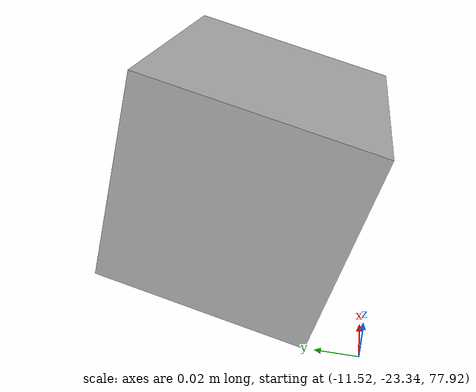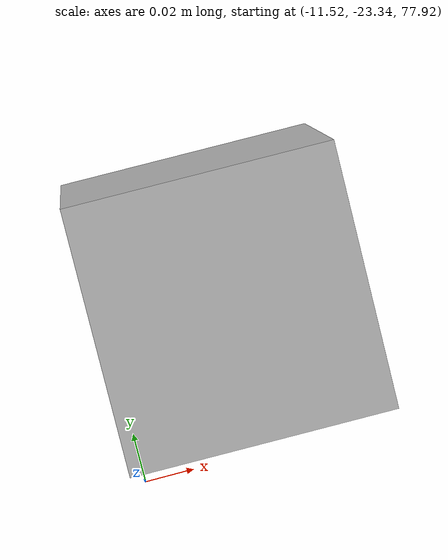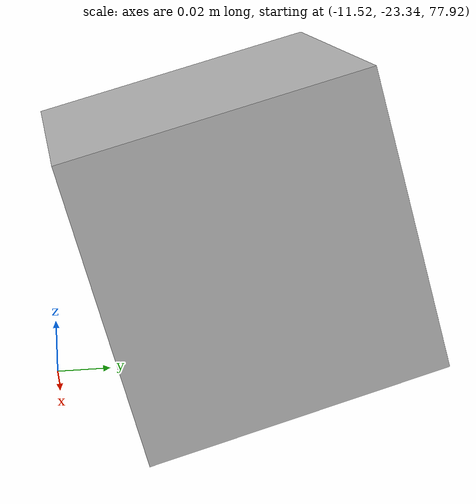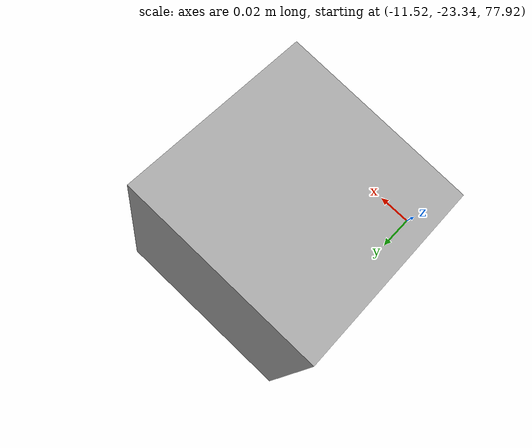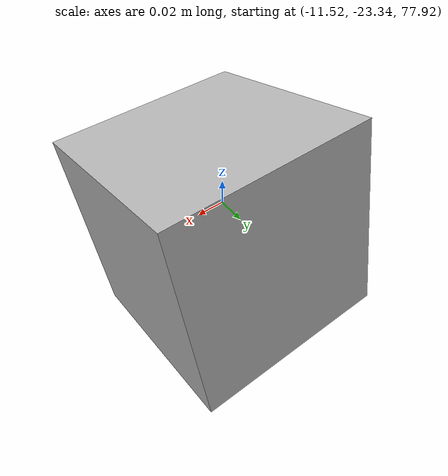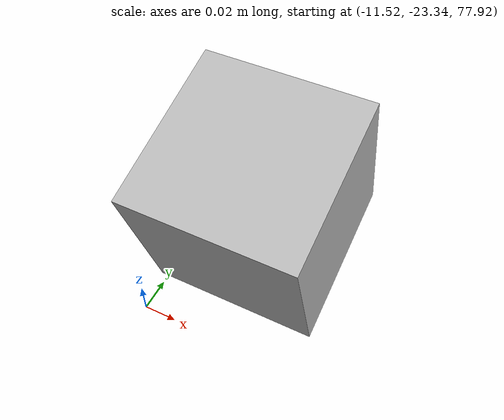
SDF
<sdf version="1.6">
 <world name="default">
  <model name="camera_recorder">
   <static>1</static>
   <pose>-11.4727 -23.2814 77.9846 0 1.2978 1.56422</pose>
   <link name="cam_link">
    <visual name="visual"><geometry><box><size>0.1 0.1 0.1</size></box></geometry></visual>
    <sensor name="my_camera" type="camera">
     <camera name="__default__">
      <horizontal_fov>1.047</horizontal_fov>
      <image><width>1920</width><height>1080</height></image>
      <clip><near>0.1</near><far>100</far></clip>
     </camera>
     <always_on>1</always_on>
     <update_rate>30</update_rate>
    </sensor>
   </link>
  </model>
  <light name="sun" type="directional">
   <pose>0 0 10 0 -0 0</pose>
   <diffuse>0.8 0.8 0.8 1</diffuse>
   <specular>0.2 0.2 0.2 1</specular>
   <attenuation>
    <range>1000</range>
    <constant>0.9</constant>
    <linear>0.01</linear>
    <quadratic>0.001</quadratic>
   </attenuation>
   <direction>-0.5 0.1 -0.9</direction>
  </light>
  <gravity>0 0 -9.8</gravity>
  <magnetic_field>6e-06 2.3e-05 -4.2e-05</magnetic_field>
  <atmosphere type="adiabatic"/>
  <physics name="default_physics" default="0" type="ode">
   <max_step_size>0.001</max_step_size>
   <real_time_factor>1</real_time_factor>
   <real_time_update_rate>1000</real_time_update_rate>
  </physics>
  <scene><ambient>0.4 0.4 0.4 1</ambient><background>0.7 0.7 0.7 1</background><shadows>1</shadows></scene>
  <audio><device>default</device></audio>
  <spherical_coordinates>
   <surface_model>EARTH_WGS84</surface_model>
   <latitude_deg>0</latitude_deg>
   <longitude_deg>0</longitude_deg>
   <elevation>0</elevation>
   <heading_deg>0</heading_deg>
  </spherical_coordinates>
  <model name="cloverleaf_interchange">
   <static>1</static>
   <link name="link">
    <collision name="collision">
     <geometry>
      <mesh>
       <uri>model://cloverleaf_interchange/meshes/cloverleaf.obj</uri>
       <scale>0.0254 0.0254 0.0254</scale>
      </mesh>
     </geometry>
    </collision>
    <visual name="visual">
     <geometry>
      <mesh>
       <uri>model://cloverleaf_interchange/meshes/cloverleaf.obj</uri>
       <scale>0.0254 0.0254 0.0254</scale>
      </mesh>
     </geometry>
    </visual>
   </link>
   <pose>121.481 -0.881388 0 0 -0 0</pose>
  </model>
 </world>
</sdf>
